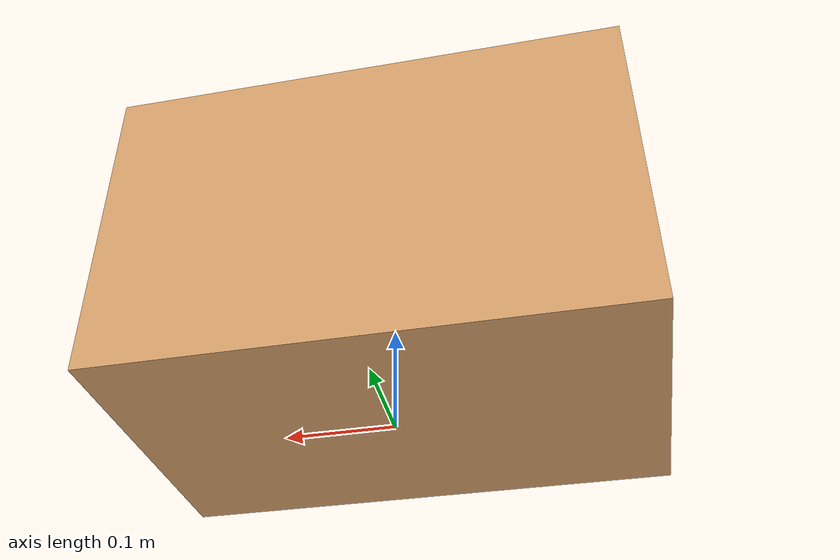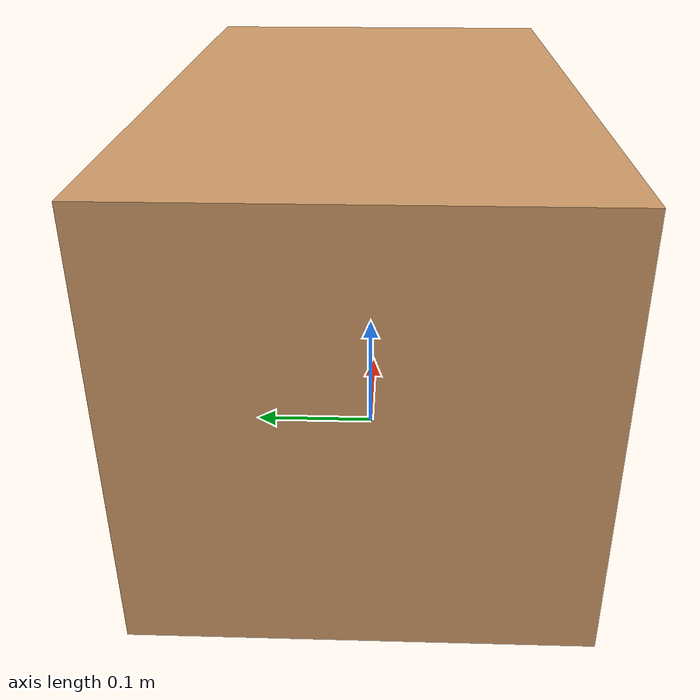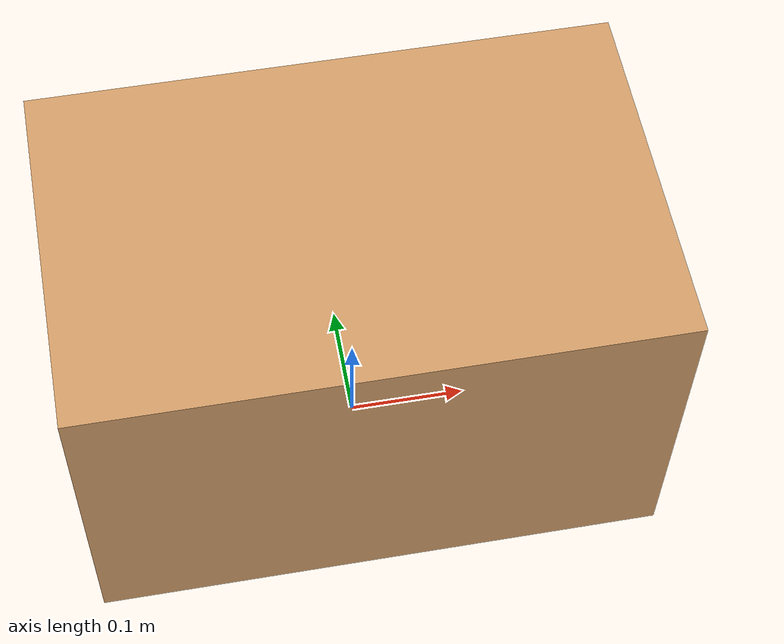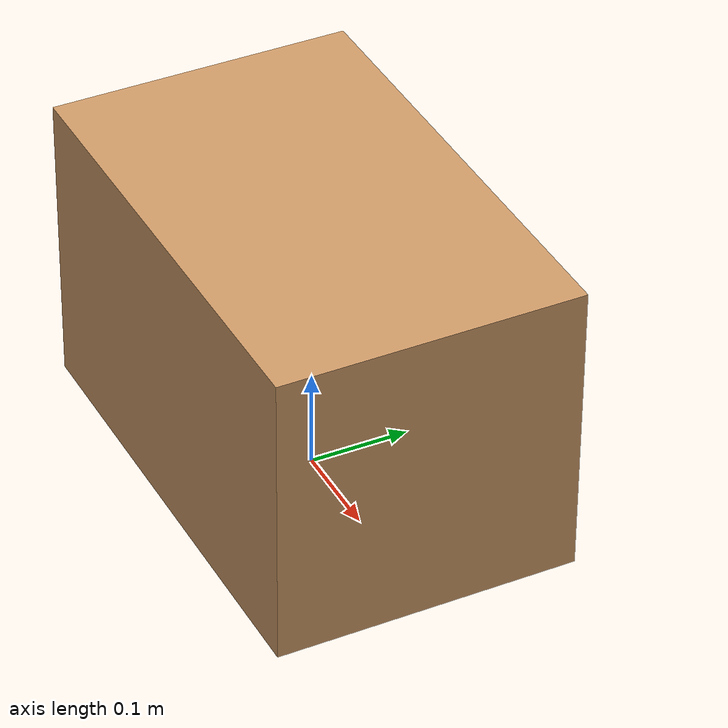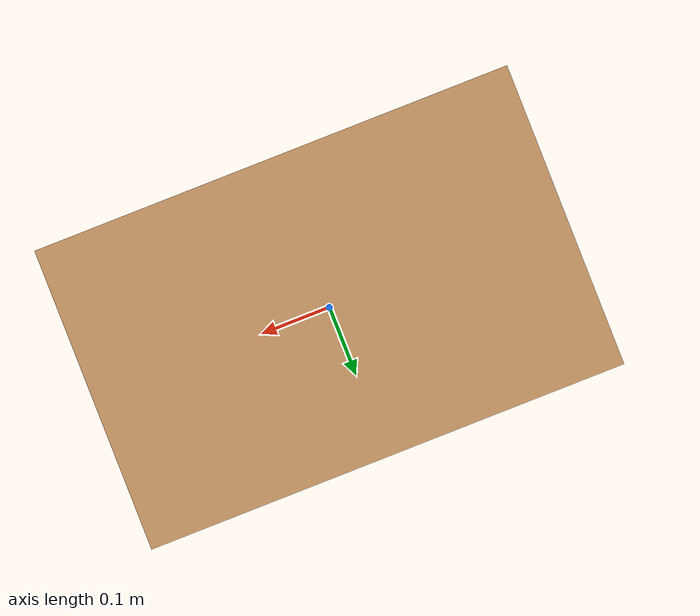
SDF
<?xml version="1.0"?>
<!-- box B of the parking: 47.5 cm along the path of the car, 30 across, 30 tall -->
<sdf version="1.9">
  <model name="box_b">
    <static>true</static>
    <link name="link">
      <pose>0 0 0.15 0 0 0</pose>
      <collision name="c"><geometry><box><size>0.475 0.30 0.30</size></box></geometry></collision>
      <visual name="v">
        <geometry><box><size>0.475 0.30 0.30</size></box></geometry>
        <material><ambient>0.8 0.6 0.4 1</ambient><diffuse>0.8 0.6 0.4 1</diffuse></material>
      </visual>
    </link>
  </model>
</sdf>
